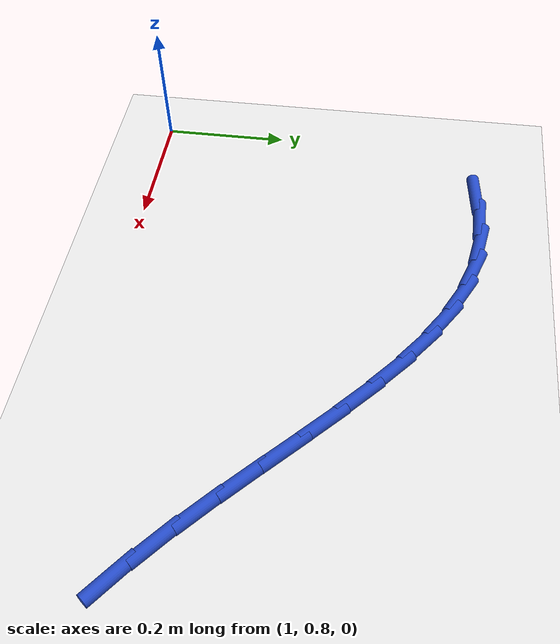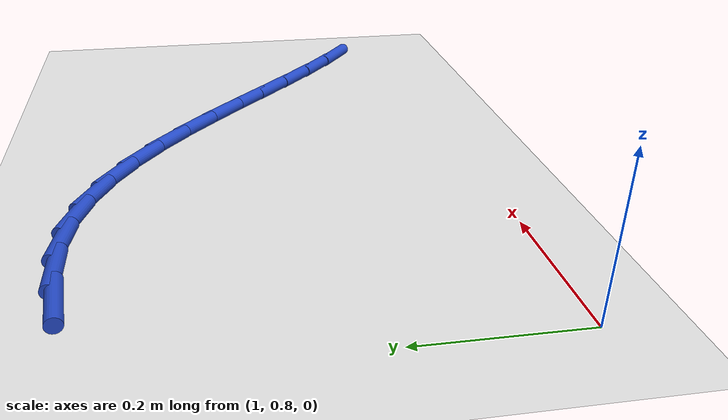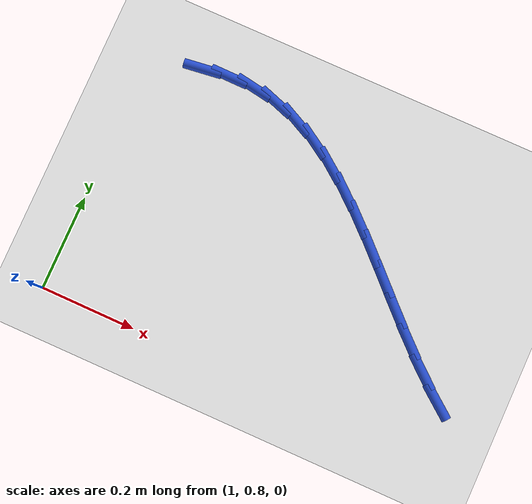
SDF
<sdf version="1.6">
 <world name="default">
  <model name="ground_plane">
   <static>1</static>
   <link name="link">
    <collision name="collision">
     <geometry><plane><normal>0 0 1</normal><size>100 100</size></plane></geometry>
     <surface><friction><ode><mu>100</mu><mu2>50</mu2></ode></friction></surface>
    </collision>
    <visual name="visual">
     <cast_shadows>0</cast_shadows>
     <geometry><plane><normal>0 0 1</normal><size>100 100</size></plane></geometry>
     <material>
      <script><uri>file://media/materials/scripts/gazebo.material</uri><name>Gazebo/WhiteGlow</name></script>
     </material>
    </visual>
   </link>
  </model>
  <model name="line">
   <link name="link_29">
    <pose>1.109500927456363 1.33909847157197 0.01 0 1.57 0.1241075967680509</pose>
    <collision name="collision">
     <geometry><cylinder><radius>0.01</radius><length>0.08</length></cylinder></geometry>
    </collision>
    <visual name="visual">
     <material>
      <script><name>Gazebo/Blue</name><uri>file://media/materials/scripts/gazebo.material</uri></script>
     </material>
     <geometry><cylinder><radius>0.01</radius><length>0.08</length></cylinder></geometry>
    </visual>
   </link>
   <link name="link_30">
    <pose>1.165974081987844 1.3461434266918468 0.01 0 1.57 -0.011743930564520551</pose>
    <collision name="collision">
     <geometry><cylinder><radius>0.01</radius><length>0.08</length></cylinder></geometry>
    </collision>
    <visual name="visual">
     <material>
      <script><name>Gazebo/Blue</name><uri>file://media/materials/scripts/gazebo.material</uri></script>
     </material>
     <geometry><cylinder><radius>0.01</radius><length>0.08</length></cylinder></geometry>
    </visual>
   </link>
   <link name="link_31">
    <pose>1.2212103430884416 1.3454947060527338 0.01 0 1.57 -0.16730063748796892</pose>
    <collision name="collision">
     <geometry><cylinder><radius>0.01</radius><length>0.08</length></cylinder></geometry>
    </collision>
    <visual name="visual">
     <material>
      <script><name>Gazebo/Blue</name><uri>file://media/materials/scripts/gazebo.material</uri></script>
     </material>
     <geometry><cylinder><radius>0.01</radius><length>0.08</length></cylinder></geometry>
    </visual>
   </link>
   <link name="link_32">
    <pose>1.2748903467130481 1.336429269964674 0.01 0 1.57 -0.32689874897903093</pose>
    <collision name="collision">
     <geometry><cylinder><radius>0.01</radius><length>0.08</length></cylinder></geometry>
    </collision>
    <visual name="visual">
     <material>
      <script><name>Gazebo/Blue</name><uri>file://media/materials/scripts/gazebo.material</uri></script>
     </material>
     <geometry><cylinder><radius>0.01</radius><length>0.08</length></cylinder></geometry>
    </visual>
   </link>
   <link name="link_33">
    <pose>1.3268773925472868 1.3188023637126898 0.01 0 1.57 -0.46249012359115826</pose>
    <collision name="collision">
     <geometry><cylinder><radius>0.01</radius><length>0.08</length></cylinder></geometry>
    </collision>
    <visual name="visual">
     <material>
      <script><name>Gazebo/Blue</name><uri>file://media/materials/scripts/gazebo.material</uri></script>
     </material>
     <geometry><cylinder><radius>0.01</radius><length>0.08</length></cylinder></geometry>
    </visual>
   </link>
   <link name="link_34">
    <pose>1.3773969040662417 1.2936156602042366 0.01 0 1.57 -0.5699596857543883</pose>
    <collision name="collision">
     <geometry><cylinder><radius>0.01</radius><length>0.08</length></cylinder></geometry>
    </collision>
    <visual name="visual">
     <material>
      <script><name>Gazebo/Blue</name><uri>file://media/materials/scripts/gazebo.material</uri></script>
     </material>
     <geometry><cylinder><radius>0.01</radius><length>0.08</length></cylinder></geometry>
    </visual>
   </link>
   <link name="link_35">
    <pose>1.4267169569087341 1.2620058624665376 0.01 0 1.57 -0.6514509825219599</pose>
    <collision name="collision">
     <geometry><cylinder><radius>0.01</radius><length>0.08</length></cylinder></geometry>
    </collision>
    <visual name="visual">
     <material>
      <script><name>Gazebo/Blue</name><uri>file://media/materials/scripts/gazebo.material</uri></script>
     </material>
     <geometry><cylinder><radius>0.01</radius><length>0.08</length></cylinder></geometry>
    </visual>
   </link>
   <link name="link_36">
    <pose>1.4751056267135816 1.225109673526816 0.01 0 1.57 -0.7102958849320469</pose>
    <collision name="collision">
     <geometry><cylinder><radius>0.01</radius><length>0.08</length></cylinder></geometry>
    </collision>
    <visual name="visual">
     <material>
      <script><name>Gazebo/Blue</name><uri>file://media/materials/scripts/gazebo.material</uri></script>
     </material>
     <geometry><cylinder><radius>0.01</radius><length>0.08</length></cylinder></geometry>
    </visual>
   </link>
   <link name="link_37">
    <pose>1.5228309891196041 1.1840637964122946 0.01 0 1.57 -0.7496184462306233</pose>
    <collision name="collision">
     <geometry><cylinder><radius>0.01</radius><length>0.08</length></cylinder></geometry>
    </collision>
    <visual name="visual">
     <material>
      <script><name>Gazebo/Blue</name><uri>file://media/materials/scripts/gazebo.material</uri></script>
     </material>
     <geometry><cylinder><radius>0.01</radius><length>0.08</length></cylinder></geometry>
    </visual>
   </link>
   <link name="link_38">
    <pose>1.5701611197656202 1.1400049341501963 0.01 0 1.57 -0.771786638301246</pose>
    <collision name="collision">
     <geometry><cylinder><radius>0.01</radius><length>0.08</length></cylinder></geometry>
    </collision>
    <visual name="visual">
     <material>
      <script><name>Gazebo/Blue</name><uri>file://media/materials/scripts/gazebo.material</uri></script>
     </material>
     <geometry><cylinder><radius>0.01</radius><length>0.08</length></cylinder></geometry>
    </visual>
   </link>
   <link name="link_39">
    <pose>1.6173640942904504 1.0940697897677443 0.01 0 1.57 -0.7782808574283915</pose>
    <collision name="collision">
     <geometry><cylinder><radius>0.01</radius><length>0.08</length></cylinder></geometry>
    </collision>
    <visual name="visual">
     <material>
      <script><name>Gazebo/Blue</name><uri>file://media/materials/scripts/gazebo.material</uri></script>
     </material>
     <geometry><cylinder><radius>0.01</radius><length>0.08</length></cylinder></geometry>
    </visual>
   </link>
   <link name="link_40">
    <pose>1.6647079883329126 1.0473950662921618 0.01 0 1.57 -0.7697099686139892</pose>
    <collision name="collision">
     <geometry><cylinder><radius>0.01</radius><length>0.08</length></cylinder></geometry>
    </collision>
    <visual name="visual">
     <material>
      <script><name>Gazebo/Blue</name><uri>file://media/materials/scripts/gazebo.material</uri></script>
     </material>
     <geometry><cylinder><radius>0.01</radius><length>0.08</length></cylinder></geometry>
    </visual>
   </link>
   <link name="link_41">
    <pose>1.712460877531828 1.0011174667506715 0.01 0 1.57 -0.7458562676471385</pose>
    <collision name="collision">
     <geometry><cylinder><radius>0.01</radius><length>0.08</length></cylinder></geometry>
    </collision>
    <visual name="visual">
     <material>
      <script><name>Gazebo/Blue</name><uri>file://media/materials/scripts/gazebo.material</uri></script>
     </material>
     <geometry><cylinder><radius>0.01</radius><length>0.08</length></cylinder></geometry>
    </visual>
   </link>
   <link name="link_42">
    <pose>1.7608908375260137 0.9563736941704966 0.01 0 1.57 -0.7057203422480657</pose>
    <collision name="collision">
     <geometry><cylinder><radius>0.01</radius><length>0.08</length></cylinder></geometry>
    </collision>
    <visual name="visual">
     <material>
      <script><name>Gazebo/Blue</name><uri>file://media/materials/scripts/gazebo.material</uri></script>
     </material>
     <geometry><cylinder><radius>0.01</radius><length>0.08</length></cylinder></geometry>
    </visual>
   </link>
   <link name="link_43">
    <pose>1.81026594395429 0.9143004515788593 0.01 0 1.57 -0.661765366493577</pose>
    <collision name="collision">
     <geometry><cylinder><radius>0.01</radius><length>0.08</length></cylinder></geometry>
    </collision>
    <visual name="visual">
     <material>
      <script><name>Gazebo/Blue</name><uri>file://media/materials/scripts/gazebo.material</uri></script>
     </material>
     <geometry><cylinder><radius>0.01</radius><length>0.08</length></cylinder></geometry>
    </visual>
   </link>
  </model>
 </world>
</sdf>
